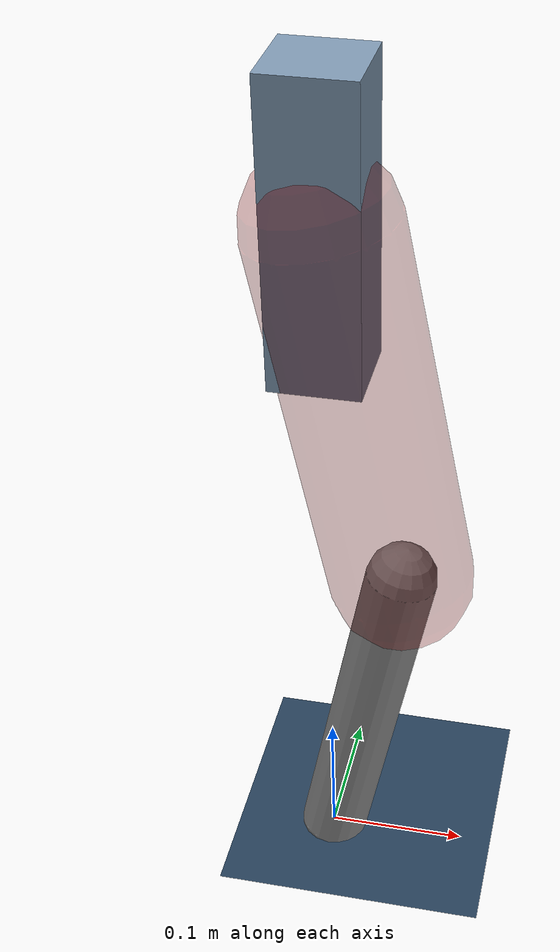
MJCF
<mujoco model="Hopper2D">
	<compiler inertiafromgeom="true" angle="radian" />
	<option timestep="0.001" integrator="implicit" cone="elliptic" solver="Newton" tolerance="1e-10" />

	<default>
		<geom contype="1" conaffinity="1" condim="3" friction="2 0.005 0.0001" solref="0.005 1" />
		<joint limited="true" damping="0.1" />
	</default>

	<asset>
		<texture name="skybox" type="skybox" builtin="gradient" rgb1=".4 .6 .8" rgb2="0 0 0" width="800" height="800" />
		<texture name="grid" type="2d" builtin="checker" rgb1=".1 .2 .3" rgb2=".2 .3 .4" width="300" height="300" mark="edge" markrgb=".2 .3 .4" />
		<material name="ground" texture="grid" texrepeat="1 1" texuniform="true" reflectance="0.1" />
		<material name="leg" rgba="0.5 0.6 0.7 1" />
	</asset>

	<worldbody>

		<geom name="floor" type="plane" size="5 5 0.25" material="ground" />

		<light directional="false" diffuse="0.8 0.8 0.8" specular="0.3 0.3 0.3" pos="0 0 2" dir="0 0 -1" />
		<light mode="targetbodycom" target="base" directional="false" diffuse="0.8 0.8 0.8" specular="0.3 0.3 0.3" pos="0 0 2" dir="0 0 -1" />

		<camera name="fixed" pos="0 -2 1" xyaxes="1 0 0 0 0 1" />
		<camera name="tracking" mode="trackcom" pos="0 -3 1" />

		<body name="root" pos="0 0 0.5147573394995565">
			<joint name="slide_x" type="slide" axis="1 0 0" range="-100 100" />
			<joint name="slide_z" type="slide" axis="0 0 1" range="0 10" />

			<body name="base" pos="0 0 0">
				<geom name="torso" type="box" size="0.03 0.03 0.1" mass="2.258" material="leg" />

				<body name="link1" pos="0 0 0" euler="0 1.3763961600297734 0">
					<joint type="hinge" axis="0 -1 0" pos="0 0 0" name="hinge1" limited="true" range="-3.14 3.14" stiffness="0" damping="0.1" />
					<geom name="thigh" type="capsule" fromto="0 0 0 0.26388828012022236 0 0" size="0.05" rgba="0.5 0 0 0.3" mass="0.8926095283125781" />

					<body name="link2" pos="0.26388828012022236 0 0" euler="0 0.3910795542717403 0">
						<joint type="hinge" axis="0 -1 0" pos="0 0 0" name="hinge2" limited="true" range="-3.14 3.14" stiffness="0" damping="0.1" />
						<geom name="shank" type="capsule" fromto="0 0 0 0.26086905937933413 0 0" size="0.025" mass="0.4514821534414007" />

					</body>
				</body>
			</body>
		</body>
	</worldbody>

	<actuator>
		<motor name="torque1" joint="hinge1" ctrlrange="-86.69442440189765 86.69442440189765" ctrllimited="true" gear="1" />
		<motor name="torque2" joint="hinge2" ctrlrange="-91.99378357551288 91.99378357551288" ctrllimited="true" gear="1" />
	</actuator>
</mujoco>
